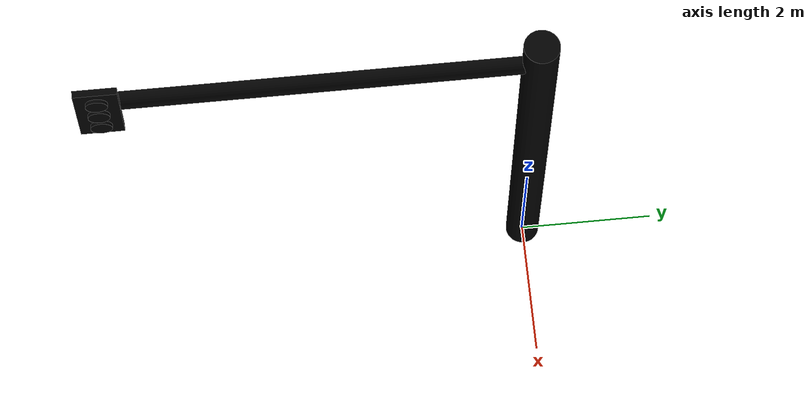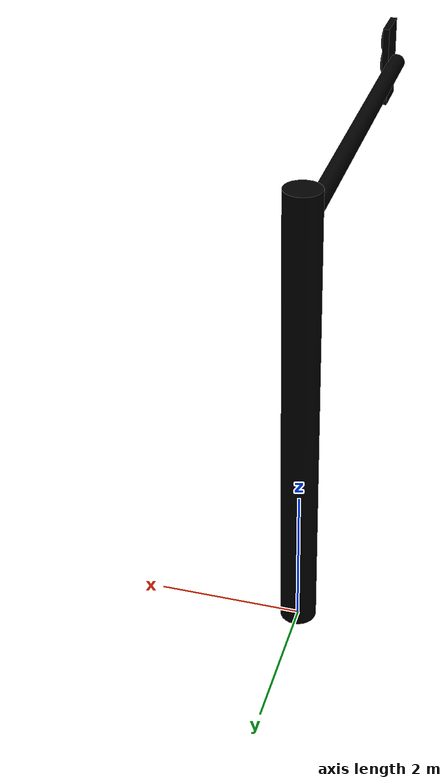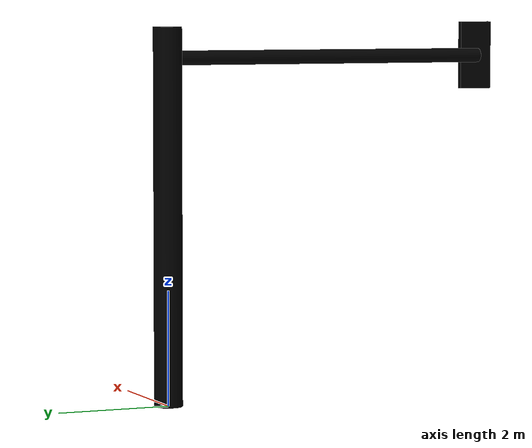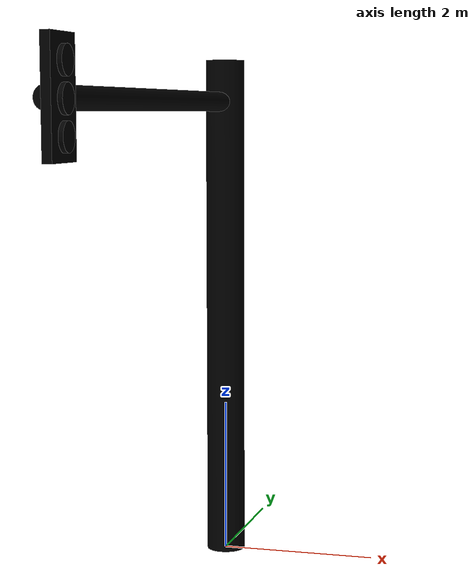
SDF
<?xml version="1.0"?>
<sdf version="1.11">
  <model name="traffic_light">
    <static>false</static>

    <link name="light_fixture">
      <gravity>false</gravity>
      <pose relative_to="cross_beam_frame">0.13 -0.535 6.0 -1.5707 0 0</pose>
      <inertial>
        <mass>5.0</mass>
        <inertia>
          <ixx>0.1</ixx><ixy>0</ixy><ixz>0</ixz>
          <iyy>0.1</iyy><iyz>0</iyz>
          <izz>0.1</izz>
        </inertia>
      </inertial>
      <visual name="visual">
        <pose>0 0 0.535 0 0 0</pose>
        <geometry>
          <box>
            <size>0.1 0.6 1.2</size>
          </box>
        </geometry>
        <material>
          <ambient>0 0 0 1</ambient>
          <diffuse>0 0 0 1</diffuse>
          <specular>0 0 0 1</specular>
        </material>
      </visual>
      <collision name="collision">
        <pose>0 0 0.535 0 0 0</pose>
        <geometry>
          <box>
            <size>0.1 0.6 1.2</size>
          </box>
        </geometry>
      </collision>
    </link>

    <link name="green_off">
      <gravity>false</gravity>
      <pose relative_to="light_fixture">0.075 0 0.175 0 1.5707 0</pose>
      <inertial>
        <mass>0.1</mass>
        <inertia>
          <ixx>0.001</ixx><ixy>0</ixy><ixz>0</ixz>
          <iyy>0.001</iyy><iyz>0</iyz>
          <izz>0.001</izz>
        </inertia>
      </inertial>
      <collision name="collision">
        <geometry>
          <cylinder>
            <radius>0.15</radius>
            <length>0.05</length>
          </cylinder>
        </geometry>
      </collision>
      <visual name="visual">
        <geometry>
          <cylinder>
            <radius>0.15</radius>
            <length>0.05</length>
          </cylinder>
        </geometry>
        <material>
          <ambient>0 1 0 1</ambient>
          <diffuse>0 0 0 1</diffuse>
          <specular>0 0 0 1</specular>
          <emissive>0 0 0 1</emissive>
        </material>
      </visual>
    </link>

    <link name="green_on">
      <gravity>false</gravity>
      <pose relative_to="light_fixture">0 0 0.175 0 1.5707 0</pose>
      <inertial>
        <mass>0.001</mass>
        <inertia>
          <ixx>1e-6</ixx><ixy>0</ixy><ixz>0</ixz>
          <iyy>1e-6</iyy><iyz>0</iyz>
          <izz>1e-6</izz>
        </inertia>
      </inertial>
      <collision name="collision">
        <geometry>
          <cylinder>
            <radius>0.15</radius>
            <length>0.002</length>
          </cylinder>
        </geometry>
      </collision>
      <visual name="visual">
        <geometry>
          <cylinder>
            <radius>0.15</radius>
            <length>0.002</length>
          </cylinder>
        </geometry>
        <material>
          <ambient>0 0 0 1</ambient>
          <diffuse>0 0 0 1</diffuse>
          <specular>0 0 0 1</specular>
          <emissive>0 1 0 1</emissive>
        </material>
      </visual>
    </link>

    <link name="yellow_off">
      <gravity>false</gravity>
      <pose relative_to="light_fixture">0.075 0 0.525 0 1.5707 0</pose>
      <inertial>
        <mass>0.1</mass>
        <inertia>
          <ixx>0.001</ixx><ixy>0</ixy><ixz>0</ixz>
          <iyy>0.001</iyy><iyz>0</iyz>
          <izz>0.001</izz>
        </inertia>
      </inertial>
      <collision name="collision">
        <geometry>
          <cylinder>
            <radius>0.15</radius>
            <length>0.05</length>
          </cylinder>
        </geometry>
      </collision>
      <visual name="visual">
        <geometry>
          <cylinder>
            <radius>0.15</radius>
            <length>0.05</length>
          </cylinder>
        </geometry>
        <material>
          <ambient>1 1 0 1</ambient>
          <diffuse>0 0 0 1</diffuse>
          <specular>0 0 0 1</specular>
          <emissive>0 0 0 1</emissive>
        </material>
      </visual>
    </link>

    <link name="yellow_on">
      <gravity>false</gravity>
      <pose relative_to="light_fixture">0 0 0.525 0 1.5707 0</pose>
      <inertial>
        <mass>0.001</mass>
        <inertia>
          <ixx>1e-6</ixx><ixy>0</ixy><ixz>0</ixz>
          <iyy>1e-6</iyy><iyz>0</iyz>
          <izz>1e-6</izz>
        </inertia>
      </inertial>
      <collision name="collision">
        <geometry>
          <cylinder>
            <radius>0.15</radius>
            <length>0.002</length>
          </cylinder>
        </geometry>
      </collision>
      <visual name="visual">
        <geometry>
          <cylinder>
            <radius>0.15</radius>
            <length>0.002</length>
          </cylinder>
        </geometry>
        <material>
          <ambient>0 0 0 1</ambient>
          <diffuse>0 0 0 1</diffuse>
          <specular>0 0 0 1</specular>
          <emissive>1 1 0 1</emissive>
        </material>
      </visual>
    </link>

    <link name="red_off">
      <gravity>false</gravity>
      <pose relative_to="light_fixture">0.075 0 0.875 0 1.5707 0</pose>
      <inertial>
        <mass>0.1</mass>
        <inertia>
          <ixx>0.001</ixx><ixy>0</ixy><ixz>0</ixz>
          <iyy>0.001</iyy><iyz>0</iyz>
          <izz>0.001</izz>
        </inertia>
      </inertial>
      <collision name="collision">
        <geometry>
          <cylinder>
            <radius>0.15</radius>
            <length>0.05</length>
          </cylinder>
        </geometry>
      </collision>
      <visual name="visual">
        <geometry>
          <cylinder>
            <radius>0.15</radius>
            <length>0.05</length>
          </cylinder>
        </geometry>
        <material>
          <ambient>1 0 0 1</ambient>
          <diffuse>0 0 0 1</diffuse>
          <specular>0 0 0 1</specular>
          <emissive>0 0 0 1</emissive>
        </material>
      </visual>
    </link>

    <link name="red_on">
      <gravity>false</gravity>
      <pose relative_to="light_fixture">0 0 0.875 0 1.5707 0</pose>
      <inertial>
        <mass>0.001</mass>
        <inertia>
          <ixx>1e-6</ixx><ixy>0</ixy><ixz>0</ixz>
          <iyy>1e-6</iyy><iyz>0</iyz>
          <izz>1e-6</izz>
        </inertia>
      </inertial>
      <collision name="collision">
        <geometry>
          <cylinder>
            <radius>0.15</radius>
            <length>0.002</length>
          </cylinder>
        </geometry>
      </collision>
      <visual name="visual">
        <geometry>
          <cylinder>
            <radius>0.15</radius>
            <length>0.002</length>
          </cylinder>
        </geometry>
        <material>
          <ambient>0 0 0 1</ambient>
          <diffuse>0 0 0 1</diffuse>
          <specular>0 0 0 1</specular>
          <emissive>1 0 0 1</emissive>
        </material>
      </visual>
    </link>

    <joint name="green_switch" type="prismatic">
      <parent>green_off</parent>
      <child>green_on</child>
      <axis>
        <xyz>0 0 1</xyz>
        <limit>
          <lower>0</lower>
          <upper>0.101</upper>
        </limit>
      </axis>
    </joint>

    <joint name="green_base" type="fixed">
      <parent>light_fixture</parent>
      <child>green_off</child>
    </joint>

    <joint name="yellow_switch" type="prismatic">
      <parent>yellow_off</parent>
      <child>yellow_on</child>
      <axis>
        <xyz>0 0 1</xyz>
        <limit>
          <lower>0</lower>
          <upper>0.101</upper>
        </limit>
      </axis>
    </joint>

    <joint name="yellow_base" type="fixed">
      <parent>light_fixture</parent>
      <child>yellow_off</child>
    </joint>

    <joint name="red_switch" type="prismatic">
      <parent>red_off</parent>
      <child>red_on</child>
      <axis>
        <xyz>0 0 1</xyz>
        <limit>
          <lower>0</lower>
          <upper>0.101</upper>
        </limit>
      </axis>
    </joint>

    <joint name="red_base" type="fixed">
      <parent>light_fixture</parent>
      <child>red_off</child>
    </joint>

    <link name="base">
      <gravity>false</gravity>
      <pose>0 0 0 0 0 0</pose>
      <inertial>
        <mass>100.0</mass>
        <inertia>
          <ixx>1.0</ixx><ixy>0</ixy><ixz>0</ixz>
          <iyy>1.0</iyy><iyz>0</iyz>
          <izz>1.0</izz>
        </inertia>
      </inertial>
      <visual name="visual">
        <pose>0 0 3.275 0 0 0</pose>
        <geometry>
          <cylinder>
            <radius>0.25</radius>
            <length>6.55</length>
          </cylinder>
        </geometry>
        <material>
          <ambient>0 0 0 1</ambient>
          <diffuse>0 0 0 1</diffuse>
          <specular>0 0 0 1</specular>
        </material>
      </visual>
      <collision name="collision">
        <pose>0 0 3.275 0 0 0</pose>
        <geometry>
          <cylinder>
            <radius>0.25</radius>
            <length>6.55</length>
          </cylinder>
        </geometry>
      </collision>
    </link>

    <link name="cross_beam">
      <gravity>false</gravity>
      <pose>0 0 6.015 1.5707 0 0</pose>
      <inertial>
        <mass>10.0</mass>
        <inertia>
          <ixx>0.1</ixx><ixy>0</ixy><ixz>0</ixz>
          <iyy>0.1</iyy><iyz>0</iyz>
          <izz>0.1</izz>
        </inertia>
      </inertial>
      <visual name="visual">
        <pose>0 0 3.0 0 0 0</pose>
        <geometry>
          <cylinder>
            <radius>0.125</radius>
            <length>6.0</length>
          </cylinder>
        </geometry>
        <material>
          <ambient>0 0 0 1</ambient>
          <diffuse>0 0 0 1</diffuse>
          <specular>0 0 0 1</specular>
        </material>
      </visual>
      <collision name="collision">
        <pose>0 0 3.0 0 0 0</pose>
        <geometry>
          <cylinder>
            <radius>0.125</radius>
            <length>6.0</length>
          </cylinder>
        </geometry>
      </collision>
    </link>

    <frame name="base_frame" attached_to="base">
    </frame>

    <frame name="cross_beam_frame">
      <pose relative_to="base_frame">0 0 6.015 1.5707 0 0</pose>
    </frame>

    <joint name="cross_beam_fixed" type="fixed">
      <parent>base</parent>
      <child>cross_beam</child>
    </joint>

    <joint name="light_mount" type="fixed">
      <parent>cross_beam</parent>
      <child>light_fixture</child>
    </joint>

    <plugin filename="TrafficLightPlugin" name="ece5532_gazebo::TrafficLightPlugin">
      <!-- Space-delimited sequence_entry elements: "color duration [flashing]" -->
      <!-- If none are provided, the plugin uses a default green/yellow/red sequence. -->
      <!-- -1=sequence, 0=RED, 1=RED_FLASH, 2=YELLOW, 3=YELLOW_FLASH, 4=GREEN, 5=GREEN_FLASH -->
    </plugin>
  </model>
</sdf>
